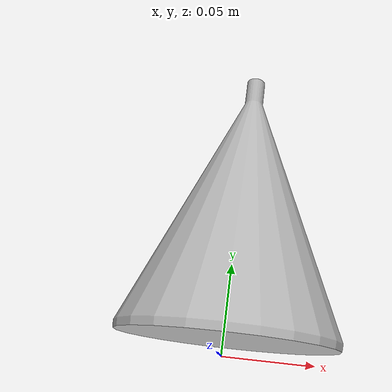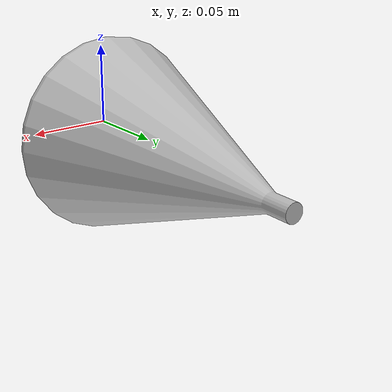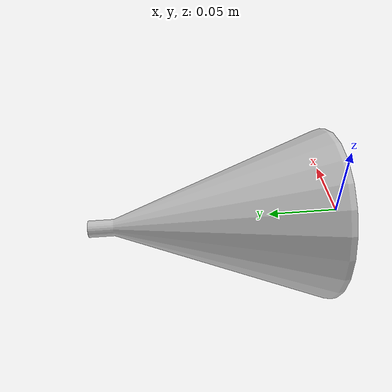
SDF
<?xml version="1.0" ?>
<sdf version="1.4">
  <model name="shelf1_metal1_2">
    <link name="body">
      <pose>0 0 0 0 0 0</pose>
      <inertial>
        <pose>   0.002000   0.051950  -0.005000 0 0 0</pose>
        <mass>0.5</mass>
        <inertia>
          <ixx>0.01</ixx>
          <ixy>0</ixy>
          <ixz>0</ixz>
          <iyy>0.01</iyy>
          <iyz>0</iyz>
          <izz>0.01</izz>
        </inertia>
      </inertial>
      <collision name="collision">
        <geometry>
          <mesh>
            <uri>model://bookshelf/shelf1_items/metal1_2/metal1_2.dae</uri>
          </mesh>
        </geometry>
      </collision>
      <visual name="visual">
        <geometry>
          <mesh>
            <uri>model://bookshelf/shelf1_items/metal1_2/metal1_2.dae</uri>
          </mesh>
        </geometry>
      </visual>
    </link>
  </model>
</sdf>
